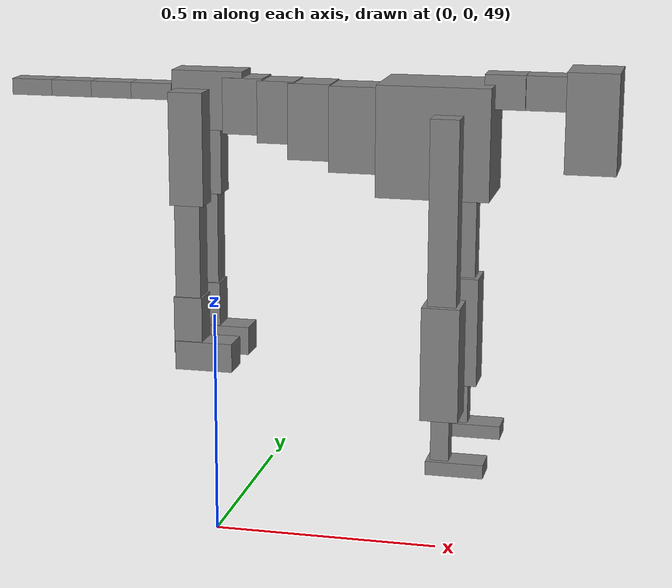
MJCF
<mujoco model="dog">

    <default>
        <joint armature="0.02" stiffness="1" damping="0.2" limited="true"/>
        <geom condim="3" friction="1 0.05 0.05" margin="0.01"/>
        <motor ctrllimited="true" ctrlrange="-1.0 1.0" forcelimited="true" gear="50"/>
    </default>

    <compiler inertiafromgeom="true" angle="radian"/>

    <option timestep="0.016" iterations="50" tolerance="1e-10" solver="Newton" jacobian="dense" cone="pyramidal"/>

    <size nconmax="20000" njmax="60000" nstack="5000000"/>
    <visual>
        <map force="0.1" zfar="30"/>
        <rgba haze="0.15 0.25 0.35 1"/>
        <quality shadowsize="2048"/>
        <global offwidth="800" offheight="800"/>
    </visual>

    <asset>
        <texture type="skybox" builtin="gradient" rgb1="0.3 0.5 0.7" rgb2="0 0 0" width="512" height="512"/>
        <texture name="texplane" type="2d" builtin="checker" rgb1=".2 .3 .4" rgb2=".1 0.15 0.2" width="512" height="512"
                 mark="cross" markrgb=".8 .8 .8"/>
        <texture name="texgeom" type="cube" builtin="flat" mark="cross" width="127" height="1278" rgb1="0.8 0.6 0.4"
                 rgb2="0.8 0.6 0.4" markrgb="1 1 1" random="0.01"/>

        <material name="matplane" reflectance="0.3" texture="texplane" texrepeat="1 1" texuniform="true"/>
        <material name="matgeom" texture="texgeom" texuniform="true" rgba="0.8 0.6 .4 1"/>
    </asset>

    <worldbody>
        <geom name="floor" pos="0 0 0" size="0 0 .25" type="plane" material="matplane" condim="3"/>

        <light directional="false" diffuse=".2 .2 .2" specular="0 0 0" pos="0 0 5" dir="0 0 -1" castshadow="false"/>
        <light mode="targetbodycom" target="torso" directional="false" diffuse=".8 .8 .8" specular="0.3 0.3 0.3"
               pos="0 0 4.0" dir="0 0 -1"/>

        <body name="root" pos="0 0 50">
            <freejoint name="root_1"/>
            <geom type="box" pos="0 0 -0.02" size="0.0774  0.0358  0.063" density="2030"/>

            <body name="spine1" pos="0.054 0 0">
                <joint name="spine1_y" axis="0 1 0" range="0 0.7" limited="true"/>
                <geom type="box" pos="0.02375 0 -0.03" size="0.04375  0.0375  0.05985" density="2030"/>

                <body name="spine2" pos="0.0612 0 0">
                    <joint name="spine2_y" axis="0 1 0" range="-0.15 0.15" limited="true"/>
                    <geom type="box" pos="0.03555  0  -0.04" size="0.04055  0.039  0.06615" density="2030"/>

                    <body name="spine3" pos="0.0730 0 0">
                        <joint name="spine3_y" axis="0 1 0" range="-0.15 0.15" limited="true"/>
                        <geom type="box" pos="0.03555  0  -0.057" size="0.04555  0.0445  0.081" density="2030"/>

                        <body name="spine4" pos="0.0780 0 0">
                            <joint name="spine4_y" axis="0 1 0" range="-0.15 0.15" limited="true"/>
                            <geom type="box" pos="0.05265  0  -0.07" size="0.05265  0.045  0.09135" density="2030"/>

                            <body name="torso" pos="0.1082 0 0">
                                <joint name="torso_y" axis="0 1 0" range="-0.15 0.15" limited="true"/>
                                <geom type="box" pos="0.11925  0  -0.085" size="0.11925  0.085  0.11745"
                                      density="2030"/>

                                <body name="neck1" pos="0.2160  0   0.0180">
                                    <joint name="neck1_y" axis="0 1 0" range="-1.2  -1" limited="true"/>
                                    <geom type="box" pos="0.0423  0  0" size="0.0423  0.03  0.036" density="2325"/>

                                    <body name="neck2" pos="0.0853  0  0">
                                        <joint name="neck2_y" axis="0 1 0" range="0.1  0" limited="true"/>
                                        <geom type="box" pos="0.0423  0  0" size="0.0423  0.03  0.036" density="2325"/>

                                        <body name="head" pos="0.0853  0  0">
                                            <joint name="head_y" axis="0 1 0" range="-0.3  -0.2" limited="true"/>
                                            <geom type="box" pos="0.0531  0  -0.055" size="0.0531  0.06  0.1044"
                                                  density="4030"/>

                                        </body>
                                    </body>
                                </body>

                                <body name="front_shoulder" pos="0.156  0   -0.0480">
                                    <joint name="front_shoulder_y" axis="0 1 0" range="-1 1.5" limited="true"/>
                                    <geom type="box" pos="0 0.13 -0.1809" size="0.0301  0.0257  0.2075" density="1158"/>
                                    <geom type="box" pos="0 -0.13 -0.1809" size="0.0301  0.0257  0.2075"
                                          density="1158"/>

                                    <body name="front_elbow" pos="0  0  -0.3617">
                                        <joint name="front_elbow_y" axis="0 1 0" range="-2 0" limited="true"/>
                                        <geom type="box" pos="0 0.13 -0.1214" size="0.0400  0.0409  0.1214"
                                              density="1081"/>
                                        <geom type="box" pos="0 -0.13 -0.1214" size="0.0400  0.0409  0.1214"
                                              density="1081"/>

                                        <body name="front_wrist" pos="0  0  -0.2429">
                                            <joint name="front_wrist_y" axis="0 1 0" range="-0.2 0" limited="true"/>
                                            <geom type="box" pos="0 0.13 -0.0531" size="0.0193  0.0215  0.0662"
                                                  density="1664"/>
                                            <geom type="box" pos="0 -0.13 -0.0531" size="0.0193  0.0215  0.0662"
                                                  density="1664"/>

                                            <body name="front_finger_end" pos="0  0  -0.1061">
                                                <joint name="front_finger_y" axis="0 1 0" range="-0.4 1"
                                                       limited="true"/>
                                                <geom type="box" pos="0.0332  0.13  0.0001"
                                                      size="0.0609  0.0332  0.0149" density="1515"/>
                                                <geom type="box" pos="0.0332  -0.13  0.0001"
                                                      size="0.0609  0.0332  0.0149" density="1515"/>

                                            </body>

                                        </body>
                                    </body>
                                </body>

                            </body>
                        </body>
                    </body>
                </body>
            </body>

            <body name="back_hip" pos="-0.03 0 -0.018">
                <joint name="back_hip_y" axis="0 1 0" range="-1.5 0.3" limited="true"/>
                <geom type="box" pos="0 0.07 -0.0982" size="0.0370  0.0290  0.1210" density="1154"/>
                <geom type="box" pos="0 -0.07 -0.0982" size="0.0370  0.0290  0.1210" density="1154"/>

                <body name="back_knee" pos="0  0  -0.1963">
                    <joint name="back_knee_y" axis="0 1 0" range="0 2.8" limited="true"/>
                    <geom type="box" pos="0 0.07 -0.1173" size="0.0276  0.0272  0.1329" density="1227"/>
                    <geom type="box" pos="0 -0.07 -0.1173" size="0.0276  0.0272  0.1329" density="1227"/>

                    <body name="back_ankle" pos="0  0  -0.2346">
                        <joint name="back_ankle_y" axis="0 1 0" range="-2.2 0" limited="true"/>
                        <geom type="box" pos="0 0.07 -0.0505" size="0.0311  0.0311  0.0618" density="1284"/>
                        <geom type="box" pos="0 -0.07 -0.0505" size="0.0311  0.0311  0.0618" density="1284"/>

                        <body name="back_toe_end" pos="0  0  -0.1010">
                            <joint name="back_toe_y" axis="0 1 0" range="-0.4 1" limited="true"/>
                            <geom type="box" pos="0.0344  0.07  -0.0165" size="0.0630  0.0344  0.0315" density="1515"/>
                            <geom type="box" pos="0.0344  -0.07  -0.0165" size="0.0630  0.0344  0.0315" density="1515"/>

                        </body>
                    </body>
                </body>
            </body>

            <body name="tail1" pos="-0.074 0 -0.006">
                <joint name="tail1_y" axis="0 1 0" range="-0.2 0.2" limited="true"/>
                <geom type="box" pos="-0.0536  0  0" size="0.045  0.025  0.0175" density="1587"/>

                <body name="tail2" pos="-0.09 0 0">
                    <joint name="tail2_y" axis="0 1 0" range="-0.2 0.2" limited="true"/>
                    <geom type="box" pos="-0.0536  0  0" size="0.045  0.025  0.0175" density="1587"/>

                    <body name="tail3" pos="-0.09 0 0">
                        <joint name="tail3_y" axis="0 1 0" range="-0.2 0.2" limited="true"/>
                        <geom type="box" pos="-0.0536  0  0" size="0.045  0.025  0.0175" density="1587"/>

                        <body name="tail4" pos="-0.09 0 0">
                            <joint name="tail4_y" axis="0 1 0" range="-0.2 0.2" limited="true"/>
                            <geom type="box" pos="-0.0536  0  0" size="0.045  0.025  0.0175" density="1587"/>

                        </body>
                    </body>
                </body>
            </body>
        </body>
    </worldbody>

    <actuator>
        <motor joint="spine1_y" forcerange="-150 150     "/>
        <motor joint="spine2_y" forcerange="-150 150     "/>
        <motor joint="spine3_y" forcerange="-150 150     "/>
        <motor joint="spine4_y" forcerange="-150 150     "/>
        <motor joint="torso_y" forcerange="-150 150     "/>
        <motor joint="neck1_y" forcerange="-100 100       "/>
        <motor joint="neck2_y" forcerange="-100 100       "/>
        <motor joint="head_y" forcerange="-150 150       "/>
        <motor joint="front_shoulder_y" forcerange="-113.86 157.67"/>
        <motor joint="front_elbow_y" forcerange="-199.94 197.18"/>
        <motor joint="front_wrist_y" forcerange="-113.61 58.02"/>
        <motor joint="front_finger_y" forcerange="-90.72 46.46"/>
        <motor joint="back_hip_y" forcerange="-265.63 321.46"/>
        <motor joint="back_knee_y" forcerange="-268.23 327.65"/>
        <motor joint="back_angle_y" forcerange="-217.71 179.79"/>
        <motor joint="back_toe_y" forcerange="-127.24 67.64"/>
        <motor joint="tail1_y" forcerange="-50 50     "/>
        <motor joint="tail2_y" forcerange="-50 50     "/>
        <motor joint="tail3_y" forcerange="-50 50     "/>
        <motor joint="tail4_y" forcerange="-50 50     "/>
    </actuator>
</mujoco>
